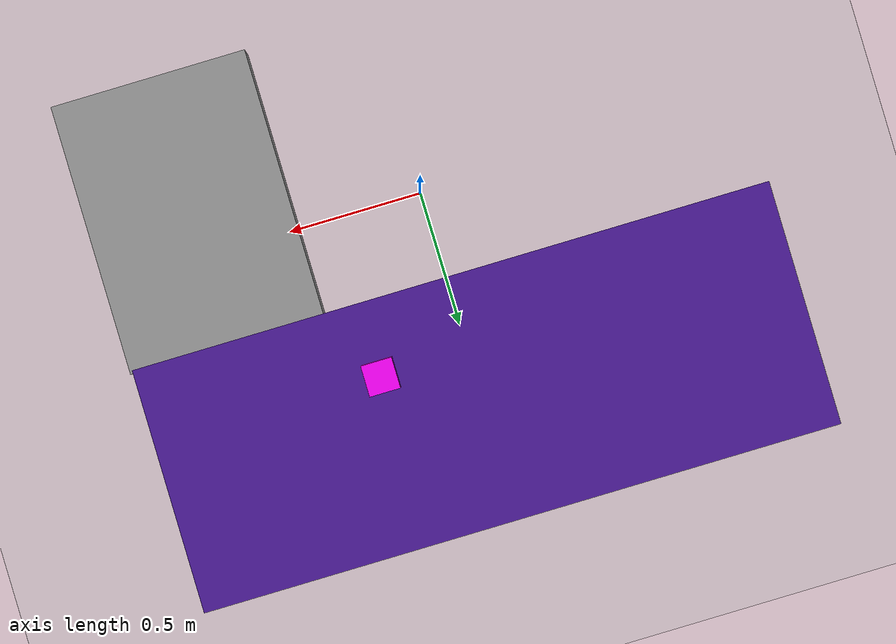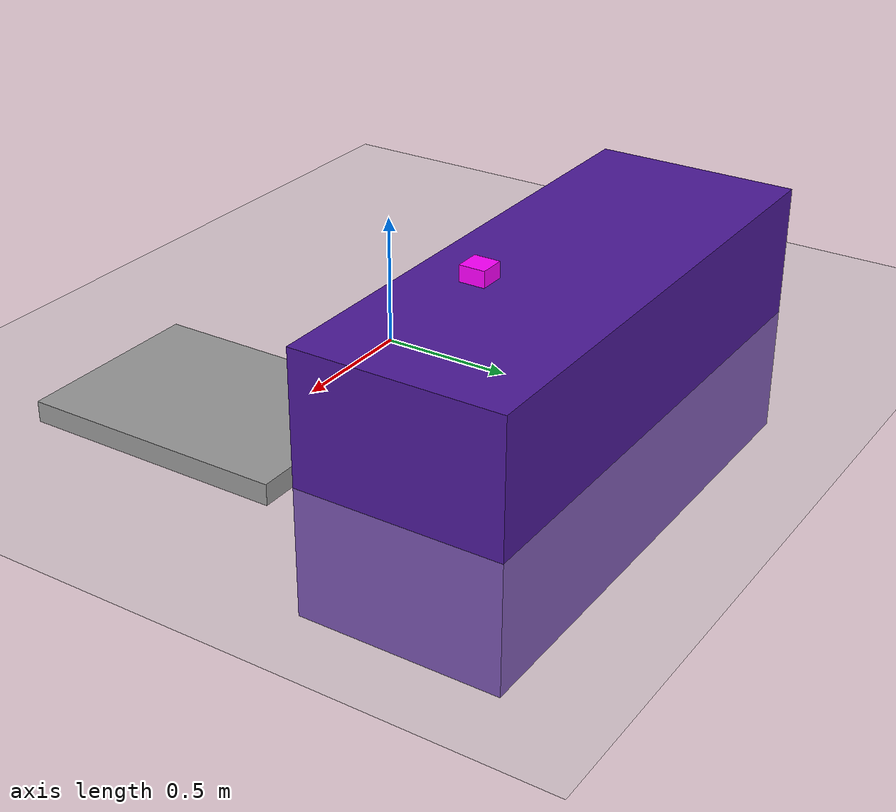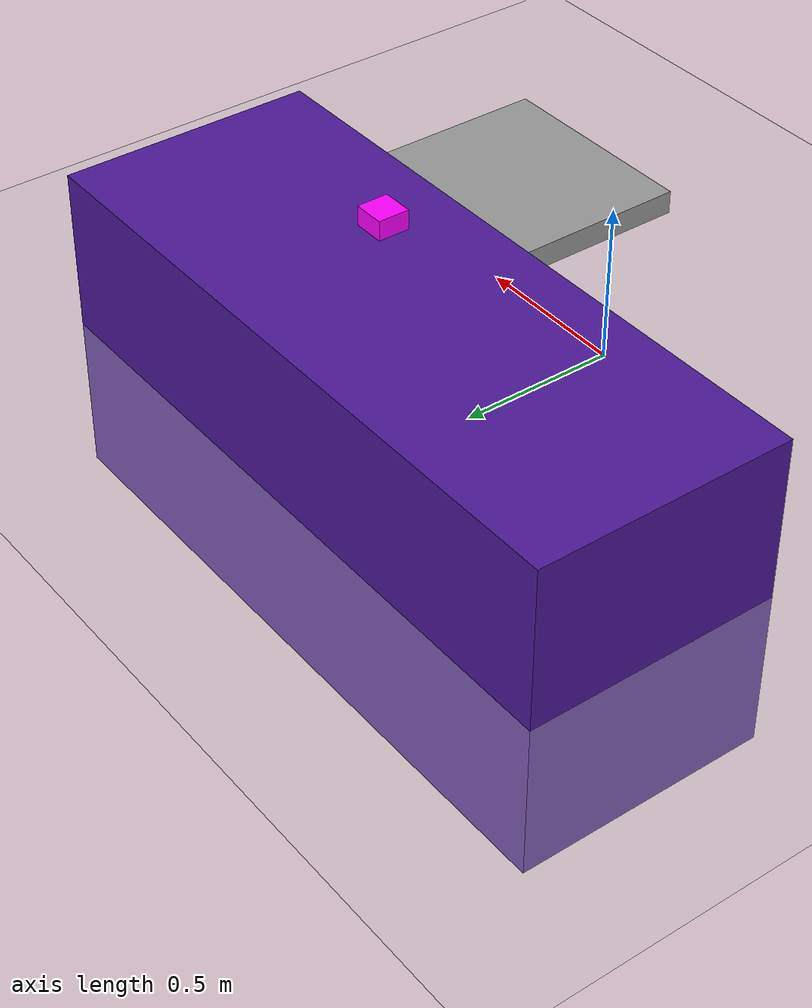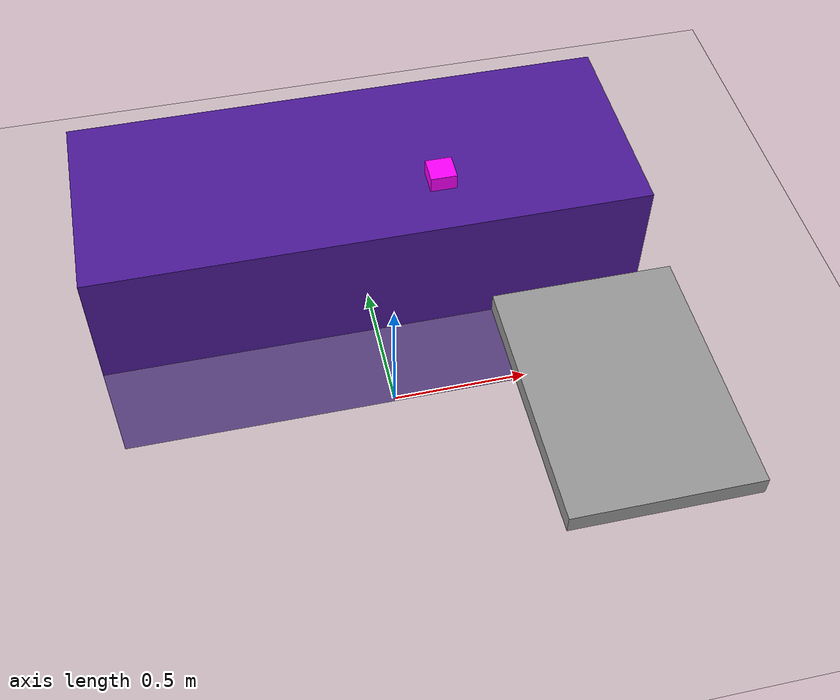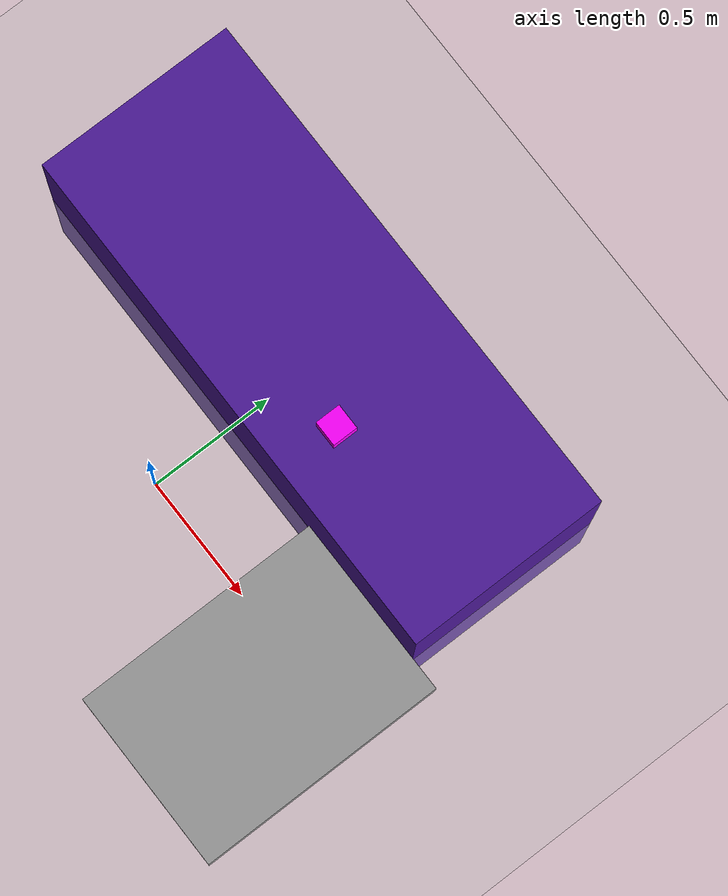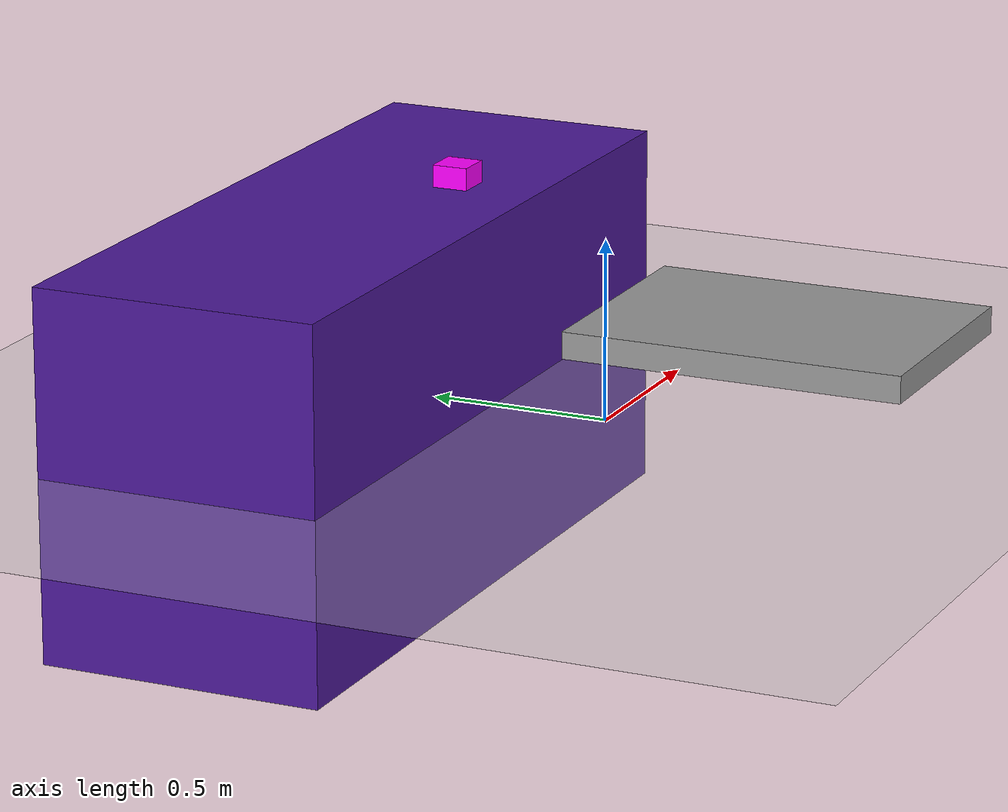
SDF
<sdf version="1.7">
 <world name="default">
  <light name="sun" type="directional">
   <pose>0 0 10 0 -0 0</pose>
   <diffuse>0.8 0.8 0.8 1</diffuse>
   <specular>0.2 0.2 0.2 1</specular>
   <attenuation>
    <range>1000</range>
    <constant>0.9</constant>
    <linear>0.01</linear>
    <quadratic>0.001</quadratic>
   </attenuation>
   <direction>-0.5 0.1 -0.9</direction>
   <spot><inner_angle>0</inner_angle><outer_angle>0</outer_angle><falloff>0</falloff></spot>
  </light>
  <model name="ground_plane">
   <static>1</static>
   <link name="link">
    <collision name="collision">
     <geometry><plane><normal>0 0 1</normal><size>100 100</size></plane></geometry>
     <surface>
      <contact><collide_bitmask>65535</collide_bitmask></contact>
      <friction><ode><mu>100</mu><mu2>50</mu2></ode></friction>
     </surface>
    </collision>
    <visual name="visual">
     <cast_shadows>0</cast_shadows>
     <geometry><plane><normal>0 0 1</normal><size>100 100</size></plane></geometry>
     <material>
      <script><uri>file://media/materials/scripts/gazebo.material</uri><name>Gazebo/Grey</name></script>
     </material>
    </visual>
   </link>
  </model>
  <gravity>0 0 -9.8</gravity>
  <magnetic_field>6e-06 2.3e-05 -4.2e-05</magnetic_field>
  <atmosphere type="adiabatic"/>
  <physics name="default_physics" default="0" type="ode">
   <max_step_size>0.001</max_step_size>
   <real_time_factor>1</real_time_factor>
   <real_time_update_rate>1000</real_time_update_rate>
  </physics>
  <scene><ambient>0.4 0.4 0.4 1</ambient><background>0.7 0.7 0.7 1</background><shadows>1</shadows></scene>
  <audio><device>default</device></audio>
  <spherical_coordinates>
   <surface_model>EARTH_WGS84</surface_model>
   <latitude_deg>0</latitude_deg>
   <longitude_deg>0</longitude_deg>
   <elevation>0</elevation>
   <heading_deg>0</heading_deg>
  </spherical_coordinates>
  <model name="table">
   <static>1</static>
   <link name="link">
    <collision name="surface">
     <pose>0 0.075 0 0 -0 0</pose>
     <geometry><box><size>2.1 0.8 1.025</size></box></geometry>
     <surface><friction><ode><mu>0.6</mu><mu2>0.6</mu2></ode></friction></surface>
    </collision>
    <visual name="visual1">
     <pose>0 0.075 0 0 -0 0</pose>
     <geometry><box><size>2.1 0.8 1.025</size></box></geometry>
     <material>
      <script><uri>file://media/materials/scripts/gazebo.material</uri><name>Gazebo/Indigo</name></script>
      <ambient>0 1 1 1</ambient>
      <shader type="vertex"><normal_map>__default__</normal_map></shader>
      <diffuse>0.7 0.9 0.7 1</diffuse>
      <specular>0.01 0.1 0.01 1</specular>
      <emissive>0 0 0 1</emissive>
     </material>
    </visual>
   </link>
   <pose>1.8e-05 0.659275 0 0 -0 0</pose>
  </model>
  <model name="unit_box_blue">
   <link name="link">
    <inertial>
     <mass>0.05</mass>
     <inertia>
      <ixx>5.763e-05</ixx>
      <ixy>0</ixy>
      <ixz>0</ixz>
      <iyy>6.331e-05</iyy>
      <iyz>0</iyz>
      <izz>6.119e-05</izz>
     </inertia>
    </inertial>
    <visual name="visual">
     <geometry><box><size>0.1 0.1 0.0625</size></box></geometry>
     <material>
      <script><name>Gazebo/Grey</name><uri>file://media/materials/scripts/gazebo.material</uri></script>
      <ambient>1 0 1 1</ambient>
      <shader type="vertex"><normal_map>__default__</normal_map></shader>
      <diffuse>0.7 0.7 0.7 1</diffuse>
      <specular>0.01 0.01 0.01 1</specular>
      <emissive>0 0 0 1</emissive>
     </material>
    </visual>
    <collision name="collision">
     <geometry><box><size>0.1 0.1 0.0625</size></box></geometry>
     <surface>
      <friction>
       <ode><mu>5</mu><mu2>5</mu2><fdir1>0 0 0</fdir1><slip1>0</slip1><slip2>0</slip2></ode>
       <torsional>
        <coefficient>1</coefficient>
        <patch_radius>0</patch_radius>
        <surface_radius>0</surface_radius>
        <use_patch_radius>1</use_patch_radius>
        <ode><slip>0</slip></ode>
       </torsional>
      </friction>
      <bounce><restitution_coefficient>0</restitution_coefficient><threshold>1e+06</threshold></bounce>
      <contact>
       <collide_without_contact>0</collide_without_contact>
       <collide_without_contact_bitmask>1</collide_without_contact_bitmask>
       <collide_bitmask>1</collide_bitmask>
       <ode>
        <soft_cfm>0</soft_cfm>
        <soft_erp>0.2</soft_erp>
        <kp>1e+13</kp>
        <kd>1</kd>
        <max_vel>0.01</max_vel>
        <min_depth>0</min_depth>
       </ode>
       <bullet>
        <split_impulse>1</split_impulse>
        <split_impulse_penetration_threshold>-0.01</split_impulse_penetration_threshold>
        <soft_cfm>0</soft_cfm>
        <soft_erp>0.2</soft_erp>
        <kp>1e+13</kp>
        <kd>1</kd>
       </bullet>
      </contact>
     </surface>
    </collision>
   </link>
   <static>0</static>
   <pose>0.3 0.575 0.54375 0 -0 1e-06</pose>
  </model>
  <model name="Untitled_1">
   <link name="link_1">
    <inertial>
     <mass>0.0570043</mass>
     <inertia>
      <ixx>0.00477974</ixx>
      <ixy>0</ixy>
      <ixz>0</ixz>
      <iyy>0.00252479</iyy>
      <iyz>0</iyz>
      <izz>0.00724576</izz>
     </inertia>
    </inertial>
    <visual name="visual">
     <geometry><box><size>0.724782 1 0.078653</size></box></geometry>
     <material>
      <lighting>1</lighting>
      <script><uri>file://media/materials/scripts/gazebo.material</uri><name>Gazebo/Grey</name></script>
      <shader type="pixel"/>
     </material>
    </visual>
    <collision name="collision">
     <geometry><box><size>0.724782 1 0.078653</size></box></geometry>
     <surface>
      <friction>
       <ode><mu>1</mu><mu2>1</mu2><fdir1>0 0 0</fdir1><slip1>0</slip1><slip2>0</slip2></ode>
       <torsional>
        <coefficient>1</coefficient>
        <patch_radius>0</patch_radius>
        <surface_radius>0</surface_radius>
        <use_patch_radius>1</use_patch_radius>
        <ode><slip>0</slip></ode>
       </torsional>
      </friction>
      <bounce><restitution_coefficient>0</restitution_coefficient><threshold>1e+06</threshold></bounce>
      <contact>
       <collide_without_contact>0</collide_without_contact>
       <collide_without_contact_bitmask>1</collide_without_contact_bitmask>
       <collide_bitmask>1</collide_bitmask>
       <ode>
        <soft_cfm>0</soft_cfm>
        <soft_erp>0.2</soft_erp>
        <kp>1e+13</kp>
        <kd>1</kd>
        <max_vel>0.01</max_vel>
        <min_depth>0</min_depth>
       </ode>
       <bullet>
        <split_impulse>1</split_impulse>
        <split_impulse_penetration_threshold>-0.01</split_impulse_penetration_threshold>
        <soft_cfm>0</soft_cfm>
        <soft_erp>0.2</soft_erp>
        <kp>1e+13</kp>
        <kd>1</kd>
       </bullet>
      </contact>
     </surface>
    </collision>
   </link>
   <static>0</static>
   <pose>0.822561 -0.165905 0.039314 0 -3.5e-05 0.000708</pose>
  </model>
 </world>
</sdf>
